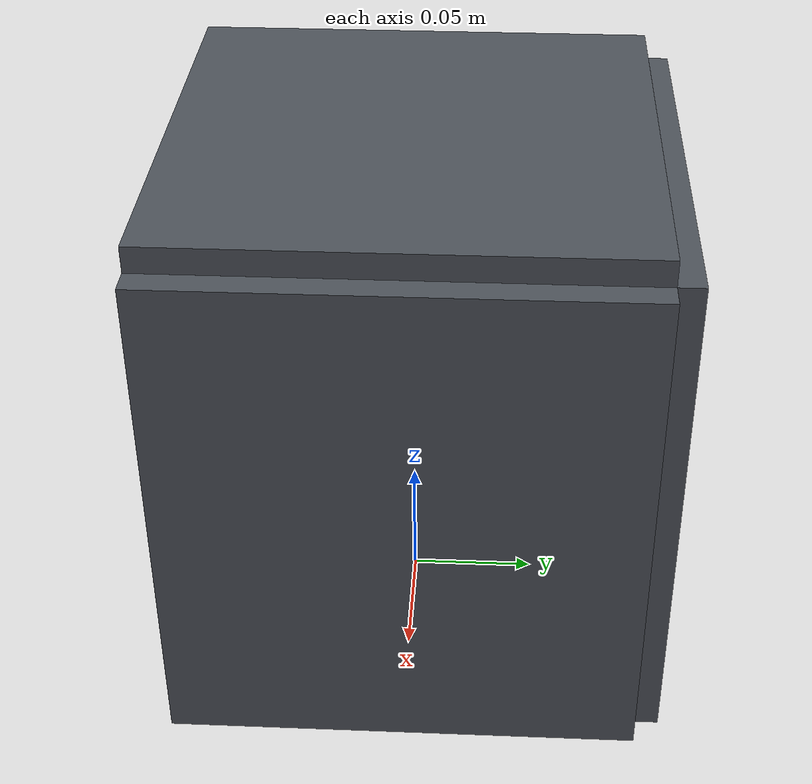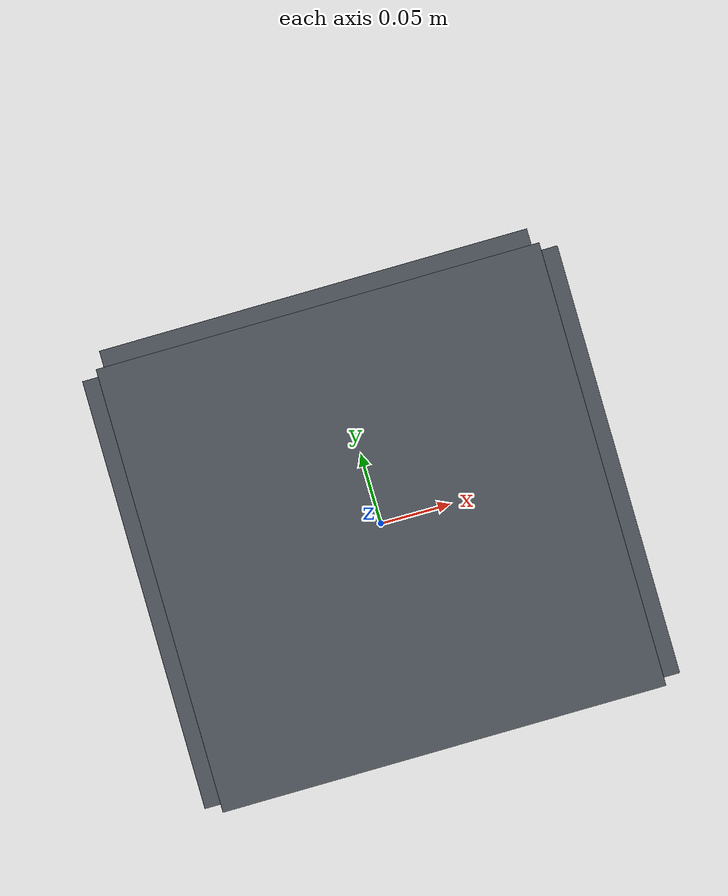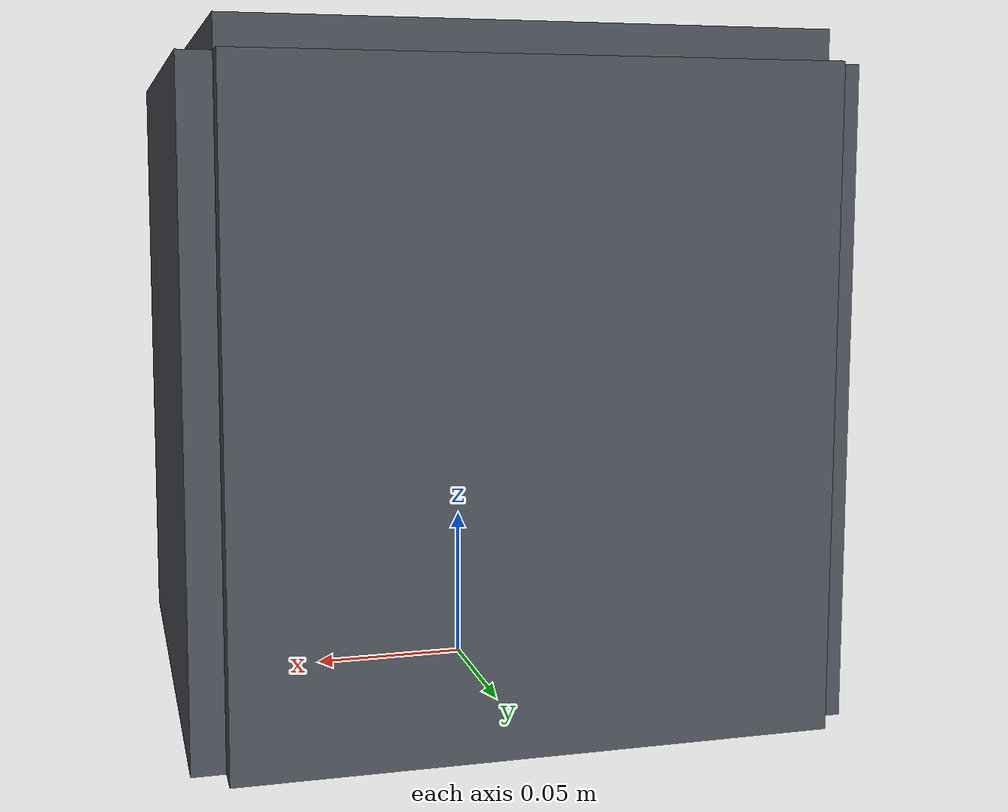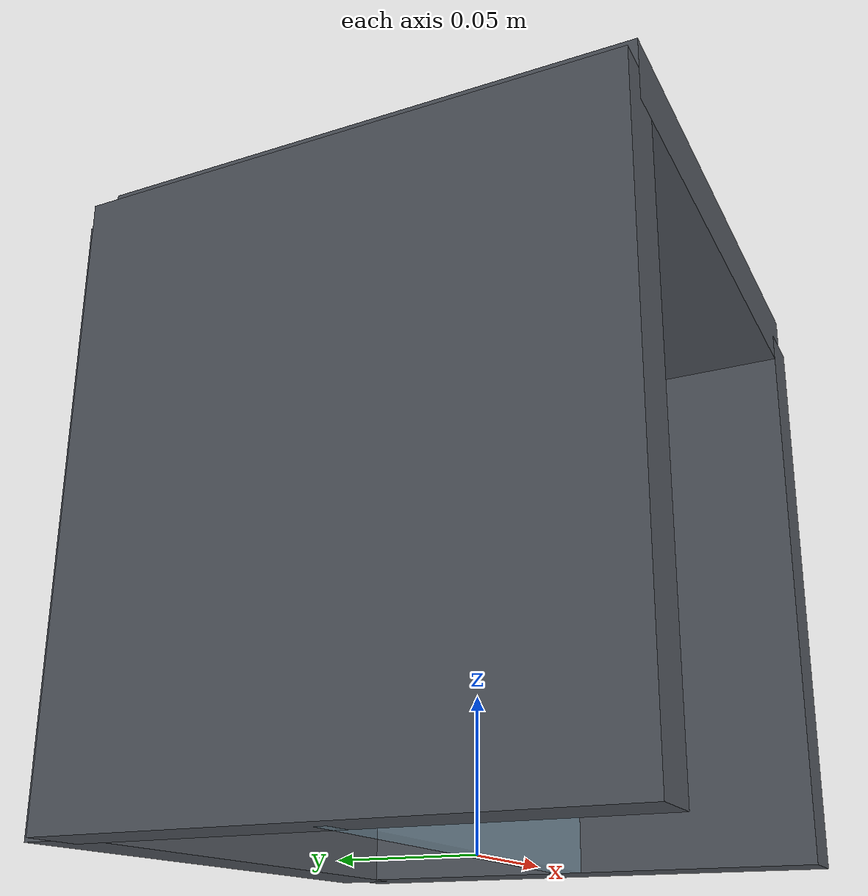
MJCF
<?xml version="1.0" encoding="utf-8"?>
<mujoco model="plasma_etcher">
  <compiler angle="radian" autolimits="true"/>
  <default>
    <default class="body"><geom contype="1" conaffinity="1"/></default>
  </default>
  <worldbody>
    <body name="base">
      <geom type="box" size="0.09 0.01 0.1" pos="0 0.09 0.1" rgba="0.3 0.32 0.35 1" class="body"/>
      <geom type="box" size="0.01 0.09 0.1" pos="-0.09 0 0.1" rgba="0.3 0.32 0.35 1" class="body"/>
      <geom type="box" size="0.01 0.09 0.1" pos="0.09 0 0.1" rgba="0.3 0.32 0.35 1" class="body"/>
      <geom type="box" size="0.09 0.09 0.01" pos="0 0 0.2" rgba="0.3 0.32 0.35 1" class="body"/>
      <body name="door" pos="-0.09 0.0 0.1">
        <joint name="door_joint" type="hinge" axis="0 0 1" range="0 1.8" damping="0.6" frictionloss="0.3"/>
  <geom type="box" size="0.09 0.005 0.1" pos="0.09 0 0" rgba="0.6 0.8 0.9 0.35" class="body"/>
      </body>
    </body>
  </worldbody>
</mujoco>
